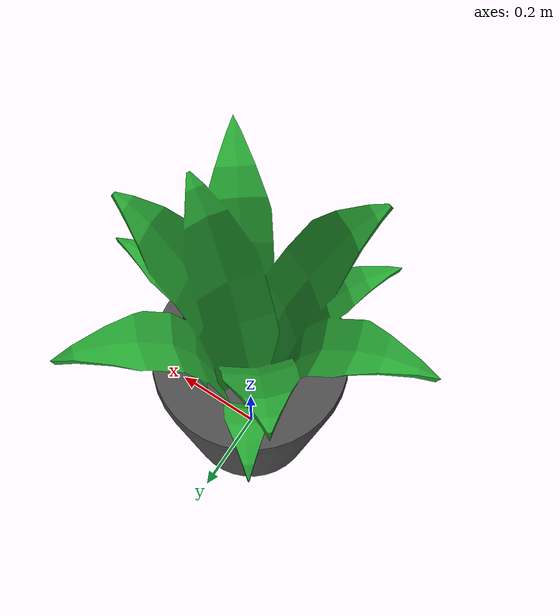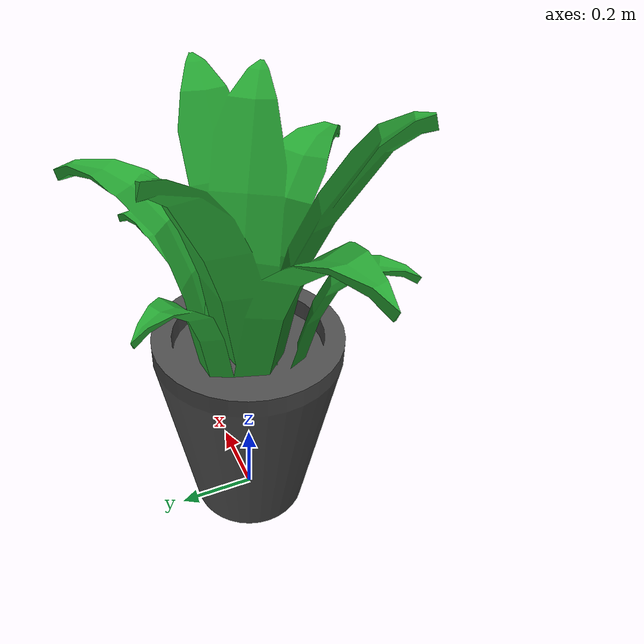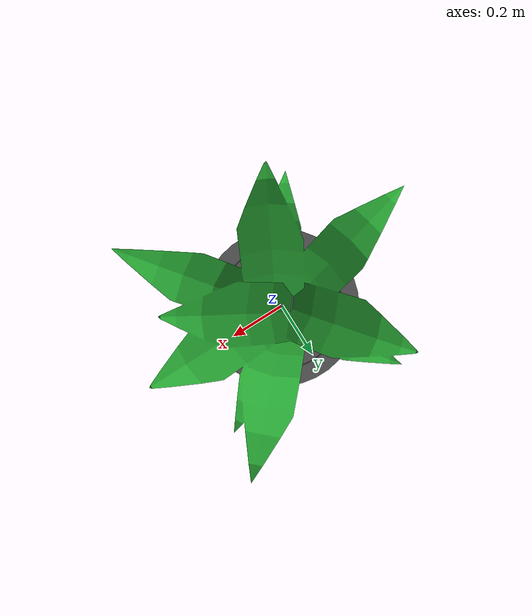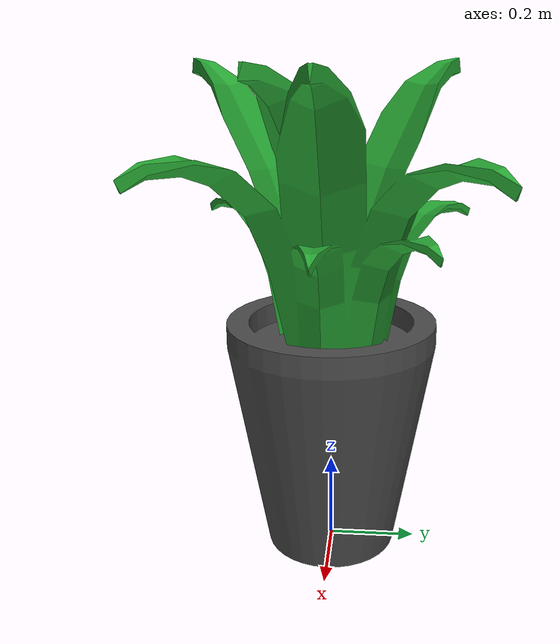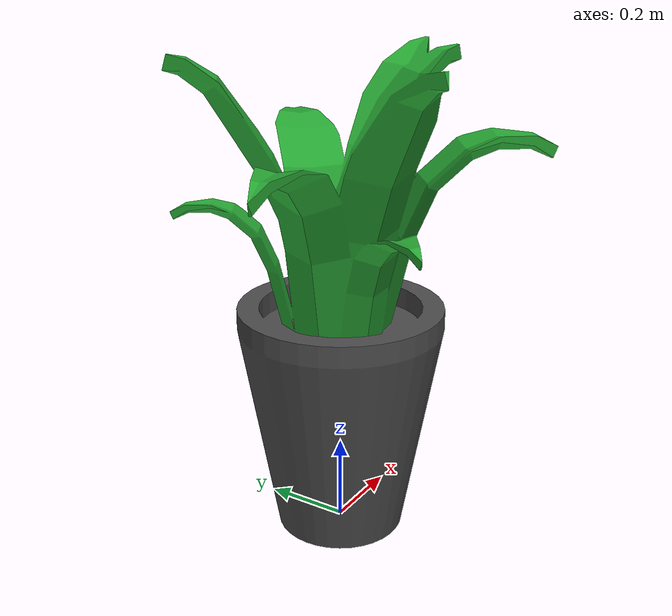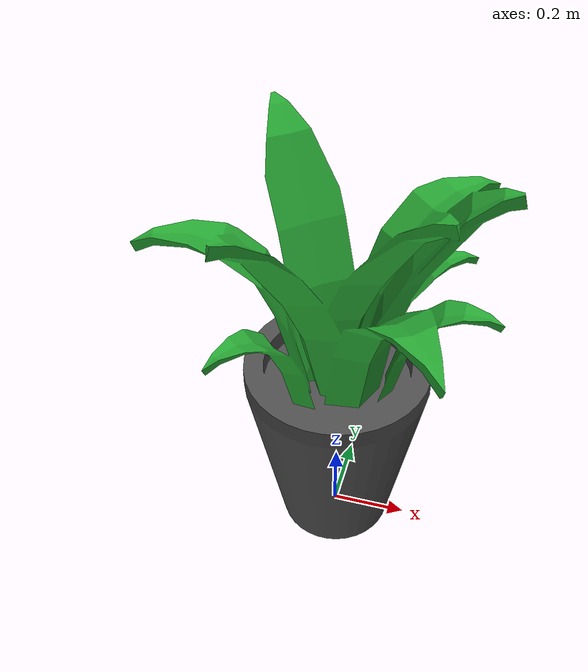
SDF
<sdf version="1.4">
  <model name="plant">
    <static>1</static>
    <link name="link1">

      <collision name="colision1">
        <pose>0 0 0 0 0 0</pose>
        <geometry>
          <mesh>
            <uri>model://plant/meshes/plant_base.stl</uri>
	    <scale> 1 1 1 </scale>
          </mesh>
        </geometry>
        <surface>
          <bounce />
          <friction>
            <ode />
          </friction>
          <contact>
            <ode />
          </contact>
        </surface>
      </collision>

      <visual name="visual1">
        <pose>0 0 0 0 0 0</pose>
        <geometry>
          <mesh>
            <uri>model://plant/meshes/plant_base.stl</uri>
	    <scale> 1 1 1 </scale>
          </mesh>
        </geometry>
        <material>
          <script>
            <uri>file://media/materials/scripts/gazebo.material</uri>
            <name>Gazebo/Road</name>
          </script>
        </material>
      </visual>

      <velocity_decay>
        <linear>0.000000</linear>
        <angular>0.000000</angular>
      </velocity_decay>
      <self_collide>0</self_collide>
      <kinematic>0</kinematic>
      <gravity>1</gravity>
    </link>

    <link name="link2">

      <collision name="colision2">
        <pose>0 0 0.5 0 0 0</pose>
        <geometry>
          <mesh>
            <uri>model://plant/meshes/plant_leaf.stl</uri>
	    <scale> 1 1 1 </scale>
          </mesh>
        </geometry>
        <surface>
          <bounce />
          <friction>
            <ode />
          </friction>
          <contact>
            <ode />
          </contact>
        </surface>
      </collision>

      <visual name="visual2">
        <pose>0 0 0.5 0 0 0</pose>
        <geometry>
          <mesh>
            <uri>model://plant/meshes/plant_leaf.stl</uri>
	    <scale> 1 1 1 </scale>
          </mesh>
        </geometry>
        <material>
          <script>
            <uri>file://media/materials/scripts/gazebo.material</uri>
            <name>Gazebo/Green</name>
          </script>
        </material>
      </visual>

      <velocity_decay>
        <linear>0.000000</linear>
        <angular>0.000000</angular>
      </velocity_decay>
      <self_collide>0</self_collide>
      <kinematic>0</kinematic>
      <gravity>1</gravity>
    </link>
  </model>
</sdf>
